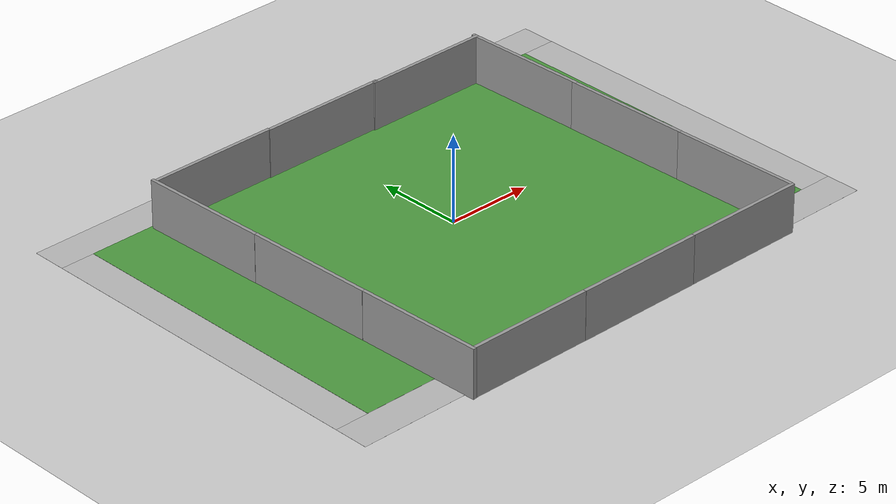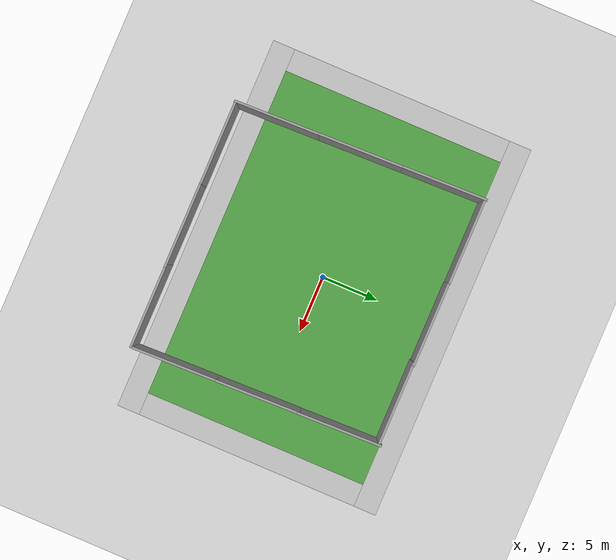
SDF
<sdf version="1.6">
 <world name="default">
  <plugin name="ardupilot_sitl_gazebo_plugin" filename="libardupilot_sitl_gazebo_plugin_rover.so">
   <UAV_MODEL>rover</UAV_MODEL>
  </plugin>
  <light name="sun" type="directional">
   <pose>0 0 10 0 -0 0</pose>
   <diffuse>0.8 0.8 0.8 1</diffuse>
   <specular>0.2 0.2 0.2 1</specular>
   <attenuation>
    <range>1000</range>
    <constant>0.9</constant>
    <linear>0.01</linear>
    <quadratic>0.001</quadratic>
   </attenuation>
   <direction>-0.5 0.1 -0.9</direction>
  </light>
  <model name="ground_plane">
   <static>1</static>
   <link name="link">
    <collision name="collision">
     <geometry><plane><normal>0 0 1</normal><size>100 100</size></plane></geometry>
     <surface><friction><ode><mu>100</mu><mu2>50</mu2></ode></friction></surface>
    </collision>
    <visual name="visual">
     <cast_shadows>0</cast_shadows>
     <geometry><plane><normal>0 0 1</normal><size>100 100</size></plane></geometry>
     <material>
      <script><uri>file://media/materials/scripts/gazebo.material</uri><name>Gazebo/Grey</name></script>
     </material>
    </visual>
   </link>
  </model>
  <gravity>0 0 -9.8</gravity>
  <magnetic_field>6e-06 2.3e-05 -4.2e-05</magnetic_field>
  <atmosphere type="adiabatic"/>
  <physics name="default_physics" default="0" type="ode">
   <max_step_size>0.001</max_step_size>
   <real_time_factor>1</real_time_factor>
   <real_time_update_rate>1000</real_time_update_rate>
  </physics>
  <scene><ambient>0.4 0.4 0.4 1</ambient><background>0.7 0.7 0.7 1</background><shadows>1</shadows></scene>
  <spherical_coordinates>
   <surface_model>EARTH_WGS84</surface_model>
   <latitude_deg>0</latitude_deg>
   <longitude_deg>0</longitude_deg>
   <elevation>0</elevation>
   <heading_deg>0</heading_deg>
  </spherical_coordinates>
  <model name="robocup_3d_field">
   <static>1</static>
   <link name="field">
    <pose>0 0 0.01 0 -0 0</pose>
    <collision name="collision">
     <geometry><plane><normal>0 0 1</normal><size>30 20</size></plane></geometry>
     <surface><friction><ode><mu>100</mu><mu2>50</mu2></ode></friction></surface>
    </collision>
    <visual name="base1">
     <pose>0 11 0.001 0 -0 0</pose>
     <cast_shadows>0</cast_shadows>
     <geometry><plane><normal>0 0 1</normal><size>34 2</size></plane></geometry>
     <material>
      <script>
       <uri>model://robocup_3Dsim_field/materials/scripts/</uri>
       <uri>model://robocup_3Dsim_field/materials/textures/</uri>
       <name>RoboCup/FieldBorder</name>
      </script>
     </material>
    </visual>
    <visual name="base2">
     <pose>0 -11 0.001 0 -0 0</pose>
     <cast_shadows>0</cast_shadows>
     <geometry><plane><normal>0 0 1</normal><size>34 2</size></plane></geometry>
     <material>
      <script>
       <uri>model://robocup_3Dsim_field/materials/scripts/</uri>
       <uri>model://robocup_3Dsim_field/materials/textures/</uri>
       <name>RoboCup/FieldBorder</name>
      </script>
     </material>
    </visual>
    <visual name="base3">
     <pose>16 0 0.001 0 -0 0</pose>
     <cast_shadows>0</cast_shadows>
     <geometry><plane><normal>0 0 1</normal><size>2 20</size></plane></geometry>
     <material>
      <script>
       <uri>model://robocup_3Dsim_field/materials/scripts/</uri>
       <uri>model://robocup_3Dsim_field/materials/textures/</uri>
       <name>RoboCup/FieldBorder</name>
      </script>
     </material>
    </visual>
    <visual name="base4">
     <pose>-16 0 0.001 0 -0 0</pose>
     <cast_shadows>0</cast_shadows>
     <geometry><plane><normal>0 0 1</normal><size>2 20</size></plane></geometry>
     <material>
      <script>
       <uri>model://robocup_3Dsim_field/materials/scripts/</uri>
       <uri>model://robocup_3Dsim_field/materials/textures/</uri>
       <name>RoboCup/FieldBorder</name>
      </script>
     </material>
    </visual>
    <visual name="carpet">
     <cast_shadows>0</cast_shadows>
     <geometry><plane><normal>0 0 1</normal><size>30 20</size></plane></geometry>
     <material>
      <script>
       <uri>model://robocup_3Dsim_field/materials/scripts/</uri>
       <uri>model://robocup_3Dsim_field/materials/textures/</uri>
       <name>RoboCup/Grass</name>
      </script>
     </material>
    </visual>
   </link>
   <pose>-0.031698 0.111229 0 0 -0 0</pose>
  </model>
  <model name="grey_wall_0">
   <static>1</static>
   <link name="link">
    <pose>0 0 1.4 0 -0 0</pose>
    <collision name="collision"><geometry><box><size>7.5 0.2 2.8</size></box></geometry></collision>
    <visual name="visual">
     <cast_shadows>0</cast_shadows>
     <geometry><box><size>7.5 0.2 2.8</size></box></geometry>
     <material>
      <script>
       <uri>model://grey_wall/materials/scripts</uri>
       <uri>model://grey_wall/materials/textures</uri>
       <name>vrc/grey_wall</name>
      </script>
     </material>
    </visual>
   </link>
   <pose>-11.079 6.21739 0 0 -0 1.59886</pose>
  </model>
  <model name="grey_wall_0_clone">
   <static>1</static>
   <link name="link">
    <pose>0 0 1.4 0 -0 0</pose>
    <collision name="collision"><geometry><box><size>7.5 0.2 2.8</size></box></geometry></collision>
    <visual name="visual">
     <cast_shadows>0</cast_shadows>
     <geometry><box><size>7.5 0.2 2.8</size></box></geometry>
     <material>
      <script>
       <uri>model://grey_wall/materials/scripts</uri>
       <uri>model://grey_wall/materials/textures</uri>
       <name>vrc/grey_wall</name>
      </script>
     </material>
    </visual>
   </link>
   <pose>10.9875 6.14537 0 0 -0 1.59886</pose>
  </model>
  <model name="grey_wall_0_clone_0">
   <static>1</static>
   <link name="link">
    <pose>0 0 1.4 0 -0 0</pose>
    <collision name="collision"><geometry><box><size>7.5 0.2 2.8</size></box></geometry></collision>
    <visual name="visual">
     <cast_shadows>0</cast_shadows>
     <geometry><box><size>7.5 0.2 2.8</size></box></geometry>
     <material>
      <script>
       <uri>model://grey_wall/materials/scripts</uri>
       <uri>model://grey_wall/materials/textures</uri>
       <name>vrc/grey_wall</name>
      </script>
     </material>
    </visual>
   </link>
   <pose>11.1726 -1.10592 0 0 -0 1.59886</pose>
  </model>
  <model name="grey_wall_0_clone_1">
   <static>1</static>
   <link name="link">
    <pose>0 0 1.4 0 -0 0</pose>
    <collision name="collision"><geometry><box><size>7.5 0.2 2.8</size></box></geometry></collision>
    <visual name="visual">
     <cast_shadows>0</cast_shadows>
     <geometry><box><size>7.5 0.2 2.8</size></box></geometry>
     <material>
      <script>
       <uri>model://grey_wall/materials/scripts</uri>
       <uri>model://grey_wall/materials/textures</uri>
       <name>vrc/grey_wall</name>
      </script>
     </material>
    </visual>
   </link>
   <pose>11.3703 -8.50636 0 0 -0 1.59886</pose>
  </model>
  <model name="grey_wall_0_clone_2">
   <static>1</static>
   <link name="link">
    <pose>0 0 1.4 0 -0 0</pose>
    <collision name="collision"><geometry><box><size>7.5 0.2 2.8</size></box></geometry></collision>
    <visual name="visual">
     <cast_shadows>0</cast_shadows>
     <geometry><box><size>7.5 0.2 2.8</size></box></geometry>
     <material>
      <script>
       <uri>model://grey_wall/materials/scripts</uri>
       <uri>model://grey_wall/materials/textures</uri>
       <name>vrc/grey_wall</name>
      </script>
     </material>
    </visual>
   </link>
   <pose>-10.8568 -1.26865 0 0 -0 1.59886</pose>
  </model>
  <model name="grey_wall_0_clone_3">
   <static>1</static>
   <link name="link">
    <pose>0 0 1.4 0 -0 0</pose>
    <collision name="collision"><geometry><box><size>7.5 0.2 2.8</size></box></geometry></collision>
    <visual name="visual">
     <cast_shadows>0</cast_shadows>
     <geometry><box><size>7.5 0.2 2.8</size></box></geometry>
     <material>
      <script>
       <uri>model://grey_wall/materials/scripts</uri>
       <uri>model://grey_wall/materials/textures</uri>
       <name>vrc/grey_wall</name>
      </script>
     </material>
    </visual>
   </link>
   <pose>-10.6373 -8.70201 0 0 -0 1.59886</pose>
  </model>
  <model name="grey_wall">
   <static>1</static>
   <link name="link">
    <pose>0 0 1.4 0 -0 0</pose>
    <collision name="collision"><geometry><box><size>7.5 0.2 2.8</size></box></geometry></collision>
    <visual name="visual">
     <cast_shadows>0</cast_shadows>
     <geometry><box><size>7.5 0.2 2.8</size></box></geometry>
     <material>
      <script>
       <uri>model://grey_wall/materials/scripts</uri>
       <uri>model://grey_wall/materials/textures</uri>
       <name>vrc/grey_wall</name>
      </script>
     </material>
    </visual>
   </link>
   <pose>-6.87707 -12.3197 0 0 -0 0</pose>
  </model>
  <model name="grey_wall_clone">
   <static>1</static>
   <link name="link">
    <pose>0 0 1.4 0 -0 0</pose>
    <collision name="collision"><geometry><box><size>7.5 0.2 2.8</size></box></geometry></collision>
    <visual name="visual">
     <cast_shadows>0</cast_shadows>
     <geometry><box><size>7.5 0.2 2.8</size></box></geometry>
     <material>
      <script>
       <uri>model://grey_wall/materials/scripts</uri>
       <uri>model://grey_wall/materials/textures</uri>
       <name>vrc/grey_wall</name>
      </script>
     </material>
    </visual>
   </link>
   <pose>0.598471 -12.3304 0 0 -0 0</pose>
  </model>
  <model name="grey_wall_clone_0">
   <static>1</static>
   <link name="link">
    <pose>0 0 1.4 0 -0 0</pose>
    <collision name="collision"><geometry><box><size>7.5 0.2 2.8</size></box></geometry></collision>
    <visual name="visual">
     <cast_shadows>0</cast_shadows>
     <geometry><box><size>7.5 0.2 2.8</size></box></geometry>
     <material>
      <script>
       <uri>model://grey_wall/materials/scripts</uri>
       <uri>model://grey_wall/materials/textures</uri>
       <name>vrc/grey_wall</name>
      </script>
     </material>
    </visual>
   </link>
   <pose>7.79261 -12.3198 0 0 -0 0</pose>
  </model>
  <model name="grey_wall_clone_1">
   <static>1</static>
   <link name="link">
    <pose>0 0 1.4 0 -0 0</pose>
    <collision name="collision"><geometry><box><size>7.5 0.2 2.8</size></box></geometry></collision>
    <visual name="visual">
     <cast_shadows>0</cast_shadows>
     <geometry><box><size>7.5 0.2 2.8</size></box></geometry>
     <material>
      <script>
       <uri>model://grey_wall/materials/scripts</uri>
       <uri>model://grey_wall/materials/textures</uri>
       <name>vrc/grey_wall</name>
      </script>
     </material>
    </visual>
   </link>
   <pose>-7.34917 9.76799 0 0 -0 0</pose>
  </model>
  <model name="grey_wall_clone_2">
   <static>1</static>
   <link name="link">
    <pose>0 0 1.4 0 -0 0</pose>
    <collision name="collision"><geometry><box><size>7.5 0.2 2.8</size></box></geometry></collision>
    <visual name="visual">
     <cast_shadows>0</cast_shadows>
     <geometry><box><size>7.5 0.2 2.8</size></box></geometry>
     <material>
      <script>
       <uri>model://grey_wall/materials/scripts</uri>
       <uri>model://grey_wall/materials/textures</uri>
       <name>vrc/grey_wall</name>
      </script>
     </material>
    </visual>
   </link>
   <pose>0.059258 9.72326 0 0 -0 0</pose>
  </model>
  <model name="grey_wall_clone_3">
   <static>1</static>
   <link name="link">
    <pose>0 0 1.4 0 -0 0</pose>
    <collision name="collision"><geometry><box><size>7.5 0.2 2.8</size></box></geometry></collision>
    <visual name="visual">
     <cast_shadows>0</cast_shadows>
     <geometry><box><size>7.5 0.2 2.8</size></box></geometry>
     <material>
      <script>
       <uri>model://grey_wall/materials/scripts</uri>
       <uri>model://grey_wall/materials/textures</uri>
       <name>vrc/grey_wall</name>
      </script>
     </material>
    </visual>
   </link>
   <pose>7.24513 9.64741 0 0 -0 0</pose>
  </model>
 </world>
</sdf>
